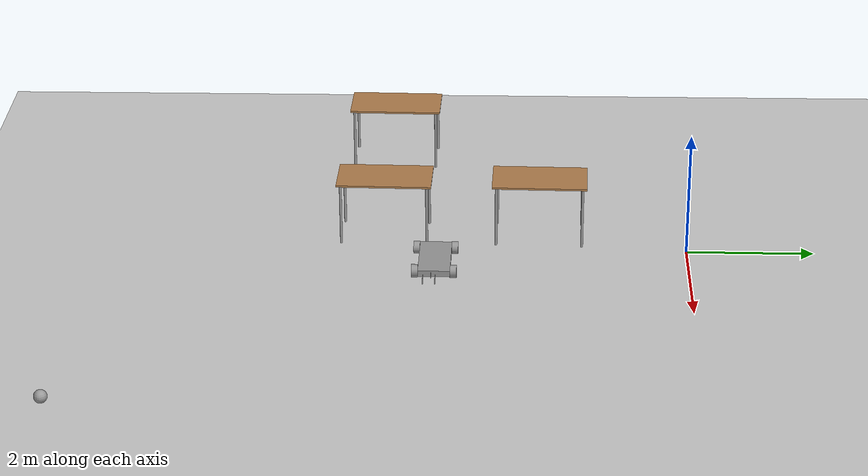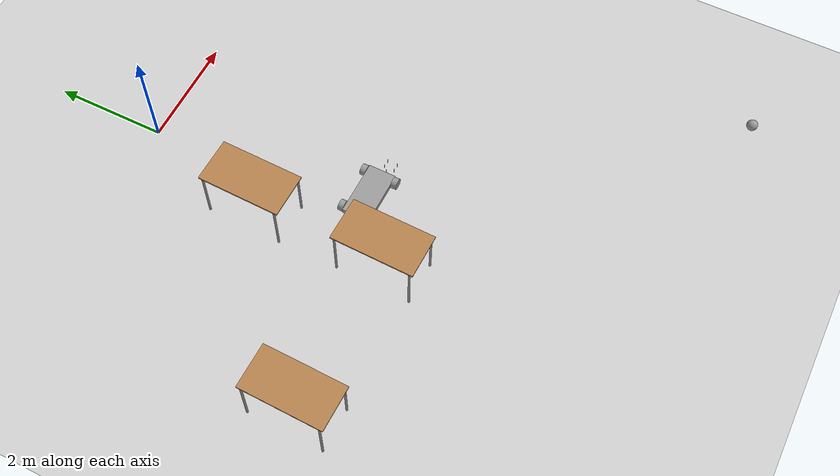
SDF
<sdf version="1.6">
 <world name="default">
  <model name="ground_plane">
   <static>1</static>
   <link name="link">
    <collision name="collision">
     <geometry><plane><normal>0 0 1</normal><size>100 100</size></plane></geometry>
     <surface>
      <contact><collide_bitmask>65535</collide_bitmask></contact>
      <friction><ode><mu>100</mu><mu2>50</mu2></ode></friction>
     </surface>
    </collision>
    <visual name="visual">
     <cast_shadows>0</cast_shadows>
     <geometry><plane><normal>0 0 1</normal><size>100 100</size></plane></geometry>
     <material>
      <script><uri>file://media/materials/scripts/gazebo.material</uri><name>Gazebo/Grey</name></script>
     </material>
    </visual>
   </link>
  </model>
  <model name="building">
   <model name="table_3">
    <static>1</static>
    <link name="link">
     <collision name="surface">
      <pose>0 0 1 0 -0 0</pose>
      <geometry><box><size>1.5 0.8 0.03</size></box></geometry>
      <surface><friction><ode><mu>0.6</mu><mu2>0.6</mu2></ode></friction></surface>
     </collision>
     <visual name="visual1">
      <pose>0 0 1 0 -0 0</pose>
      <geometry><box><size>1.5 0.8 0.03</size></box></geometry>
      <material>
       <script><uri>file://media/materials/scripts/gazebo.material</uri><name>Gazebo/Wood</name></script>
      </material>
     </visual>
     <collision name="front_left_leg">
      <pose>0.68 0.38 0.5 0 -0 0</pose>
      <geometry><cylinder><radius>0.02</radius><length>1</length></cylinder></geometry>
     </collision>
     <visual name="front_left_leg">
      <pose>0.68 0.38 0.5 0 -0 0</pose>
      <geometry><cylinder><radius>0.02</radius><length>1</length></cylinder></geometry>
      <material>
       <script><uri>file://media/materials/scripts/gazebo.material</uri><name>Gazebo/Grey</name></script>
      </material>
     </visual>
     <collision name="front_right_leg">
      <pose>0.68 -0.38 0.5 0 -0 0</pose>
      <geometry><cylinder><radius>0.02</radius><length>1</length></cylinder></geometry>
     </collision>
     <visual name="front_right_leg">
      <pose>0.68 -0.38 0.5 0 -0 0</pose>
      <geometry><cylinder><radius>0.02</radius><length>1</length></cylinder></geometry>
      <material>
       <script><uri>file://media/materials/scripts/gazebo.material</uri><name>Gazebo/Grey</name></script>
      </material>
     </visual>
     <collision name="back_right_leg">
      <pose>-0.68 -0.38 0.5 0 -0 0</pose>
      <geometry><cylinder><radius>0.02</radius><length>1</length></cylinder></geometry>
     </collision>
     <visual name="back_right_leg">
      <pose>-0.68 -0.38 0.5 0 -0 0</pose>
      <geometry><cylinder><radius>0.02</radius><length>1</length></cylinder></geometry>
      <material>
       <script><uri>file://media/materials/scripts/gazebo.material</uri><name>Gazebo/Grey</name></script>
      </material>
     </visual>
     <collision name="back_left_leg">
      <pose>-0.68 0.38 0.5 0 -0 0</pose>
      <geometry><cylinder><radius>0.02</radius><length>1</length></cylinder></geometry>
     </collision>
     <visual name="back_left_leg">
      <pose>-0.68 0.38 0.5 0 -0 0</pose>
      <geometry><cylinder><radius>0.02</radius><length>1</length></cylinder></geometry>
      <material>
       <script><uri>file://media/materials/scripts/gazebo.material</uri><name>Gazebo/Grey</name></script>
      </material>
     </visual>
    </link>
    <pose>-3.15507 -5.06799 0 0 0 -1.59458</pose>
   </model>
   <model name="table_3_clone_0">
    <static>1</static>
    <link name="link">
     <collision name="surface">
      <pose>0 0 1 0 -0 0</pose>
      <geometry><box><size>1.5 0.8 0.03</size></box></geometry>
      <surface><friction><ode><mu>0.6</mu><mu2>0.6</mu2></ode></friction></surface>
     </collision>
     <visual name="visual1">
      <pose>0 0 1 0 -0 0</pose>
      <geometry><box><size>1.5 0.8 0.03</size></box></geometry>
      <material>
       <script><uri>file://media/materials/scripts/gazebo.material</uri><name>Gazebo/Wood</name></script>
      </material>
     </visual>
     <collision name="front_left_leg">
      <pose>0.68 0.38 0.5 0 -0 0</pose>
      <geometry><cylinder><radius>0.02</radius><length>1</length></cylinder></geometry>
     </collision>
     <visual name="front_left_leg">
      <pose>0.68 0.38 0.5 0 -0 0</pose>
      <geometry><cylinder><radius>0.02</radius><length>1</length></cylinder></geometry>
      <material>
       <script><uri>file://media/materials/scripts/gazebo.material</uri><name>Gazebo/Grey</name></script>
      </material>
     </visual>
     <collision name="front_right_leg">
      <pose>0.68 -0.38 0.5 0 -0 0</pose>
      <geometry><cylinder><radius>0.02</radius><length>1</length></cylinder></geometry>
     </collision>
     <visual name="front_right_leg">
      <pose>0.68 -0.38 0.5 0 -0 0</pose>
      <geometry><cylinder><radius>0.02</radius><length>1</length></cylinder></geometry>
      <material>
       <script><uri>file://media/materials/scripts/gazebo.material</uri><name>Gazebo/Grey</name></script>
      </material>
     </visual>
     <collision name="back_right_leg">
      <pose>-0.68 -0.38 0.5 0 -0 0</pose>
      <geometry><cylinder><radius>0.02</radius><length>1</length></cylinder></geometry>
     </collision>
     <visual name="back_right_leg">
      <pose>-0.68 -0.38 0.5 0 -0 0</pose>
      <geometry><cylinder><radius>0.02</radius><length>1</length></cylinder></geometry>
      <material>
       <script><uri>file://media/materials/scripts/gazebo.material</uri><name>Gazebo/Grey</name></script>
      </material>
     </visual>
     <collision name="back_left_leg">
      <pose>-0.68 0.38 0.5 0 -0 0</pose>
      <geometry><cylinder><radius>0.02</radius><length>1</length></cylinder></geometry>
     </collision>
     <visual name="back_left_leg">
      <pose>-0.68 0.38 0.5 0 -0 0</pose>
      <geometry><cylinder><radius>0.02</radius><length>1</length></cylinder></geometry>
      <material>
       <script><uri>file://media/materials/scripts/gazebo.material</uri><name>Gazebo/Grey</name></script>
      </material>
     </visual>
    </link>
    <pose>-0.282863 -5.12208 0 0 0 -1.59458</pose>
   </model>
   <model name="table_3_clone_1">
    <static>1</static>
    <link name="link">
     <collision name="surface">
      <pose>0 0 1 0 -0 0</pose>
      <geometry><box><size>1.5 0.8 0.03</size></box></geometry>
      <surface><friction><ode><mu>0.6</mu><mu2>0.6</mu2></ode></friction></surface>
     </collision>
     <visual name="visual1">
      <pose>0 0 1 0 -0 0</pose>
      <geometry><box><size>1.5 0.8 0.03</size></box></geometry>
      <material>
       <script><uri>file://media/materials/scripts/gazebo.material</uri><name>Gazebo/Wood</name></script>
      </material>
     </visual>
     <collision name="front_left_leg">
      <pose>0.68 0.38 0.5 0 -0 0</pose>
      <geometry><cylinder><radius>0.02</radius><length>1</length></cylinder></geometry>
     </collision>
     <visual name="front_left_leg">
      <pose>0.68 0.38 0.5 0 -0 0</pose>
      <geometry><cylinder><radius>0.02</radius><length>1</length></cylinder></geometry>
      <material>
       <script><uri>file://media/materials/scripts/gazebo.material</uri><name>Gazebo/Grey</name></script>
      </material>
     </visual>
     <collision name="front_right_leg">
      <pose>0.68 -0.38 0.5 0 -0 0</pose>
      <geometry><cylinder><radius>0.02</radius><length>1</length></cylinder></geometry>
     </collision>
     <visual name="front_right_leg">
      <pose>0.68 -0.38 0.5 0 -0 0</pose>
      <geometry><cylinder><radius>0.02</radius><length>1</length></cylinder></geometry>
      <material>
       <script><uri>file://media/materials/scripts/gazebo.material</uri><name>Gazebo/Grey</name></script>
      </material>
     </visual>
     <collision name="back_right_leg">
      <pose>-0.68 -0.38 0.5 0 -0 0</pose>
      <geometry><cylinder><radius>0.02</radius><length>1</length></cylinder></geometry>
     </collision>
     <visual name="back_right_leg">
      <pose>-0.68 -0.38 0.5 0 -0 0</pose>
      <geometry><cylinder><radius>0.02</radius><length>1</length></cylinder></geometry>
      <material>
       <script><uri>file://media/materials/scripts/gazebo.material</uri><name>Gazebo/Grey</name></script>
      </material>
     </visual>
     <collision name="back_left_leg">
      <pose>-0.68 0.38 0.5 0 -0 0</pose>
      <geometry><cylinder><radius>0.02</radius><length>1</length></cylinder></geometry>
     </collision>
     <visual name="back_left_leg">
      <pose>-0.68 0.38 0.5 0 -0 0</pose>
      <geometry><cylinder><radius>0.02</radius><length>1</length></cylinder></geometry>
      <material>
       <script><uri>file://media/materials/scripts/gazebo.material</uri><name>Gazebo/Grey</name></script>
      </material>
     </visual>
    </link>
    <pose>-0.263102 -2.66567 0 0 0 -1.59458</pose>
   </model>
   <static>0</static>
   <pose>-0.30353 0.345668 0 0 -0 0</pose>
  </model>
  <model name="4wheelWithGripper_0">
   <model name="4_wheel_with_gripper">
    <link name="link_0">
     <pose>-0.32743 0.03164 0 0 -0 0</pose>
     <inertial>
      <mass>1</mass>
      <inertia>
       <ixx>0.166667</ixx>
       <ixy>0</ixy>
       <ixz>0</ixz>
       <iyy>0.166667</iyy>
       <iyz>0</iyz>
       <izz>0.166667</izz>
      </inertia>
     </inertial>
     <visual name="visual">
      <geometry><box><size>1 0.5 0.1</size></box></geometry>
      <material>
       <lighting>1</lighting>
       <script><uri>file://media/materials/scripts/gazebo.material</uri><name>Gazebo/Grey</name></script>
       <shader type="pixel"><normal_map>__default__</normal_map></shader>
       <ambient>0.3 0.3 0.3 1</ambient>
       <diffuse>0.7 0.7 0.7 1</diffuse>
       <specular>0.01 0.01 0.01 1</specular>
       <emissive>0 0 0 1</emissive>
      </material>
     </visual>
     <collision name="collision">
      <geometry><box><size>1 0.5 0.1</size></box></geometry>
      <surface>
       <friction>
        <ode><mu>1</mu><mu2>1</mu2><fdir1>0 0 0</fdir1><slip1>0</slip1><slip2>0</slip2></ode>
        <torsional>
         <coefficient>1</coefficient>
         <patch_radius>0</patch_radius>
         <surface_radius>0</surface_radius>
         <use_patch_radius>1</use_patch_radius>
         <ode><slip>0</slip></ode>
        </torsional>
       </friction>
       <bounce><restitution_coefficient>0</restitution_coefficient><threshold>1e+06</threshold></bounce>
       <contact>
        <collide_without_contact>0</collide_without_contact>
        <collide_without_contact_bitmask>1</collide_without_contact_bitmask>
        <collide_bitmask>1</collide_bitmask>
        <ode>
         <soft_cfm>0</soft_cfm>
         <soft_erp>0.2</soft_erp>
         <kp>1e+13</kp>
         <kd>1</kd>
         <max_vel>0.01</max_vel>
         <min_depth>0</min_depth>
        </ode>
        <bullet>
         <split_impulse>1</split_impulse>
         <split_impulse_penetration_threshold>-0.01</split_impulse_penetration_threshold>
         <soft_cfm>0</soft_cfm>
         <soft_erp>0.2</soft_erp>
         <kp>1e+13</kp>
         <kd>1</kd>
        </bullet>
       </contact>
      </surface>
     </collision>
    </link>
    <link name="link_2">
     <pose>-0.72743 -0.268373 0 1.5707 -0 0</pose>
     <inertial>
      <mass>1</mass>
      <inertia><ixx>0.145833</ixx><ixy>0</ixy><ixz>0</ixz><iyy>0.145833</iyy><iyz>0</iyz><izz>0.125</izz></inertia>
     </inertial>
     <visual name="visual">
      <geometry><cylinder><radius>0.1</radius><length>0.1</length></cylinder></geometry>
      <material>
       <lighting>1</lighting>
       <script><uri>file://media/materials/scripts/gazebo.material</uri><name>Gazebo/Grey</name></script>
       <shader type="pixel"><normal_map>__default__</normal_map></shader>
       <ambient>0.3 0.3 0.3 1</ambient>
       <diffuse>0.7 0.7 0.7 1</diffuse>
       <specular>0.01 0.01 0.01 1</specular>
       <emissive>0 0 0 1</emissive>
      </material>
     </visual>
     <collision name="collision">
      <geometry><cylinder><radius>0.1</radius><length>0.1</length></cylinder></geometry>
      <surface>
       <friction>
        <ode><mu>1</mu><mu2>1</mu2><fdir1>0 0 0</fdir1><slip1>0</slip1><slip2>0</slip2></ode>
        <torsional>
         <coefficient>1</coefficient>
         <patch_radius>0</patch_radius>
         <surface_radius>0</surface_radius>
         <use_patch_radius>1</use_patch_radius>
         <ode><slip>0</slip></ode>
        </torsional>
       </friction>
       <bounce><restitution_coefficient>0</restitution_coefficient><threshold>1e+06</threshold></bounce>
       <contact>
        <collide_without_contact>0</collide_without_contact>
        <collide_without_contact_bitmask>1</collide_without_contact_bitmask>
        <collide_bitmask>1</collide_bitmask>
        <ode>
         <soft_cfm>0</soft_cfm>
         <soft_erp>0.2</soft_erp>
         <kp>1e+13</kp>
         <kd>1</kd>
         <max_vel>0.01</max_vel>
         <min_depth>0</min_depth>
        </ode>
        <bullet>
         <split_impulse>1</split_impulse>
         <split_impulse_penetration_threshold>-0.01</split_impulse_penetration_threshold>
         <soft_cfm>0</soft_cfm>
         <soft_erp>0.2</soft_erp>
         <kp>1e+13</kp>
         <kd>1</kd>
        </bullet>
       </contact>
      </surface>
     </collision>
    </link>
    <link name="link_2_clone">
     <pose>0.07257 0.33165 0 1.5707 -0 0</pose>
     <inertial>
      <mass>1</mass>
      <inertia><ixx>0.145833</ixx><ixy>0</ixy><ixz>0</ixz><iyy>0.145833</iyy><iyz>0</iyz><izz>0.125</izz></inertia>
     </inertial>
     <visual name="visual">
      <geometry><cylinder><radius>0.1</radius><length>0.1</length></cylinder></geometry>
      <material>
       <lighting>1</lighting>
       <script><uri>file://media/materials/scripts/gazebo.material</uri><name>Gazebo/Grey</name></script>
       <shader type="pixel"><normal_map>__default__</normal_map></shader>
       <ambient>0.3 0.3 0.3 1</ambient>
       <diffuse>0.7 0.7 0.7 1</diffuse>
       <specular>0.01 0.01 0.01 1</specular>
       <emissive>0 0 0 1</emissive>
      </material>
     </visual>
     <collision name="collision">
      <geometry><cylinder><radius>0.1</radius><length>0.1</length></cylinder></geometry>
      <surface>
       <friction>
        <ode><mu>1</mu><mu2>1</mu2><fdir1>0 0 0</fdir1><slip1>0</slip1><slip2>0</slip2></ode>
        <torsional>
         <coefficient>1</coefficient>
         <patch_radius>0</patch_radius>
         <surface_radius>0</surface_radius>
         <use_patch_radius>1</use_patch_radius>
         <ode><slip>0</slip></ode>
        </torsional>
       </friction>
       <bounce><restitution_coefficient>0</restitution_coefficient><threshold>1e+06</threshold></bounce>
       <contact>
        <collide_without_contact>0</collide_without_contact>
        <collide_without_contact_bitmask>1</collide_without_contact_bitmask>
        <collide_bitmask>1</collide_bitmask>
        <ode>
         <soft_cfm>0</soft_cfm>
         <soft_erp>0.2</soft_erp>
         <kp>1e+13</kp>
         <kd>1</kd>
         <max_vel>0.01</max_vel>
         <min_depth>0</min_depth>
        </ode>
        <bullet>
         <split_impulse>1</split_impulse>
         <split_impulse_penetration_threshold>-0.01</split_impulse_penetration_threshold>
         <soft_cfm>0</soft_cfm>
         <soft_erp>0.2</soft_erp>
         <kp>1e+13</kp>
         <kd>1</kd>
        </bullet>
       </contact>
      </surface>
     </collision>
    </link>
    <link name="link_2_clone_0">
     <pose>-0.72743 0.33165 0 1.5707 -0 0</pose>
     <inertial>
      <mass>1</mass>
      <inertia><ixx>0.145833</ixx><ixy>0</ixy><ixz>0</ixz><iyy>0.145833</iyy><iyz>0</iyz><izz>0.125</izz></inertia>
     </inertial>
     <visual name="visual">
      <geometry><cylinder><radius>0.1</radius><length>0.1</length></cylinder></geometry>
      <material>
       <lighting>1</lighting>
       <script><uri>file://media/materials/scripts/gazebo.material</uri><name>Gazebo/Grey</name></script>
       <shader type="pixel"><normal_map>__default__</normal_map></shader>
       <ambient>0.3 0.3 0.3 1</ambient>
       <diffuse>0.7 0.7 0.7 1</diffuse>
       <specular>0.01 0.01 0.01 1</specular>
       <emissive>0 0 0 1</emissive>
      </material>
     </visual>
     <collision name="collision">
      <geometry><cylinder><radius>0.1</radius><length>0.1</length></cylinder></geometry>
      <surface>
       <friction>
        <ode><mu>1</mu><mu2>1</mu2><fdir1>0 0 0</fdir1><slip1>0</slip1><slip2>0</slip2></ode>
        <torsional>
         <coefficient>1</coefficient>
         <patch_radius>0</patch_radius>
         <surface_radius>0</surface_radius>
         <use_patch_radius>1</use_patch_radius>
         <ode><slip>0</slip></ode>
        </torsional>
       </friction>
       <bounce><restitution_coefficient>0</restitution_coefficient><threshold>1e+06</threshold></bounce>
       <contact>
        <collide_without_contact>0</collide_without_contact>
        <collide_without_contact_bitmask>1</collide_without_contact_bitmask>
        <collide_bitmask>1</collide_bitmask>
        <ode>
         <soft_cfm>0</soft_cfm>
         <soft_erp>0.2</soft_erp>
         <kp>1e+13</kp>
         <kd>1</kd>
         <max_vel>0.01</max_vel>
         <min_depth>0</min_depth>
        </ode>
        <bullet>
         <split_impulse>1</split_impulse>
         <split_impulse_penetration_threshold>-0.01</split_impulse_penetration_threshold>
         <soft_cfm>0</soft_cfm>
         <soft_erp>0.2</soft_erp>
         <kp>1e+13</kp>
         <kd>1</kd>
        </bullet>
       </contact>
      </surface>
     </collision>
    </link>
    <link name="link_2_clone_1">
     <pose>0.07257 -0.268369 0 1.5707 -0 0</pose>
     <inertial>
      <mass>1</mass>
      <inertia><ixx>0.145833</ixx><ixy>0</ixy><ixz>0</ixz><iyy>0.145833</iyy><iyz>0</iyz><izz>0.125</izz></inertia>
     </inertial>
     <visual name="visual">
      <geometry><cylinder><radius>0.1</radius><length>0.1</length></cylinder></geometry>
      <material>
       <lighting>1</lighting>
       <script><uri>file://media/materials/scripts/gazebo.material</uri><name>Gazebo/Grey</name></script>
       <shader type="pixel"><normal_map>__default__</normal_map></shader>
       <ambient>0.3 0.3 0.3 1</ambient>
       <diffuse>0.7 0.7 0.7 1</diffuse>
       <specular>0.01 0.01 0.01 1</specular>
       <emissive>0 0 0 1</emissive>
      </material>
     </visual>
     <collision name="collision">
      <geometry><cylinder><radius>0.1</radius><length>0.1</length></cylinder></geometry>
      <surface>
       <friction>
        <ode><mu>1</mu><mu2>1</mu2><fdir1>0 0 0</fdir1><slip1>0</slip1><slip2>0</slip2></ode>
        <torsional>
         <coefficient>1</coefficient>
         <patch_radius>0</patch_radius>
         <surface_radius>0</surface_radius>
         <use_patch_radius>1</use_patch_radius>
         <ode><slip>0</slip></ode>
        </torsional>
       </friction>
       <bounce><restitution_coefficient>0</restitution_coefficient><threshold>1e+06</threshold></bounce>
       <contact>
        <collide_without_contact>0</collide_without_contact>
        <collide_without_contact_bitmask>1</collide_without_contact_bitmask>
        <collide_bitmask>1</collide_bitmask>
        <ode>
         <soft_cfm>0</soft_cfm>
         <soft_erp>0.2</soft_erp>
         <kp>1e+13</kp>
         <kd>1</kd>
         <max_vel>0.01</max_vel>
         <min_depth>0</min_depth>
        </ode>
        <bullet>
         <split_impulse>1</split_impulse>
         <split_impulse_penetration_threshold>-0.01</split_impulse_penetration_threshold>
         <soft_cfm>0</soft_cfm>
         <soft_erp>0.2</soft_erp>
         <kp>1e+13</kp>
         <kd>1</kd>
        </bullet>
       </contact>
      </surface>
     </collision>
    </link>
    <link name="link_3">
     <pose>0.22257 -0.01336 0 0 -0 0</pose>
     <inertial>
      <mass>1</mass>
      <inertia>
       <ixx>0.166667</ixx>
       <ixy>0</ixy>
       <ixz>0</ixz>
       <iyy>0.166667</iyy>
       <iyz>0</iyz>
       <izz>0.166667</izz>
      </inertia>
     </inertial>
     <visual name="visual">
      <geometry><box><size>0.01 0.01 0.1</size></box></geometry>
      <material>
       <lighting>1</lighting>
       <script><uri>file://media/materials/scripts/gazebo.material</uri><name>Gazebo/Grey</name></script>
       <shader type="pixel"><normal_map>__default__</normal_map></shader>
       <ambient>0.3 0.3 0.3 1</ambient>
       <diffuse>0.7 0.7 0.7 1</diffuse>
       <specular>0.01 0.01 0.01 1</specular>
       <emissive>0 0 0 1</emissive>
      </material>
     </visual>
     <collision name="collision">
      <geometry><box><size>0.1 0.1 0.1</size></box></geometry>
      <surface>
       <friction>
        <ode><mu>1</mu><mu2>1</mu2><fdir1>0 0 0</fdir1><slip1>0</slip1><slip2>0</slip2></ode>
        <torsional>
         <coefficient>1</coefficient>
         <patch_radius>0</patch_radius>
         <surface_radius>0</surface_radius>
         <use_patch_radius>1</use_patch_radius>
         <ode><slip>0</slip></ode>
        </torsional>
       </friction>
       <bounce><restitution_coefficient>0</restitution_coefficient><threshold>1e+06</threshold></bounce>
       <contact>
        <collide_without_contact>0</collide_without_contact>
        <collide_without_contact_bitmask>1</collide_without_contact_bitmask>
        <collide_bitmask>1</collide_bitmask>
        <ode>
         <soft_cfm>0</soft_cfm>
         <soft_erp>0.2</soft_erp>
         <kp>1e+13</kp>
         <kd>1</kd>
         <max_vel>0.01</max_vel>
         <min_depth>0</min_depth>
        </ode>
        <bullet>
         <split_impulse>1</split_impulse>
         <split_impulse_penetration_threshold>-0.01</split_impulse_penetration_threshold>
         <soft_cfm>0</soft_cfm>
         <soft_erp>0.2</soft_erp>
         <kp>1e+13</kp>
         <kd>1</kd>
        </bullet>
       </contact>
      </surface>
     </collision>
    </link>
    <link name="link_3_clone">
     <pose>0.29472 0.05879 0 0 -0 0.5</pose>
     <inertial>
      <mass>1</mass>
      <inertia>
       <ixx>0.166667</ixx>
       <ixy>0</ixy>
       <ixz>0</ixz>
       <iyy>0.166667</iyy>
       <iyz>0</iyz>
       <izz>0.166667</izz>
      </inertia>
     </inertial>
     <visual name="visual">
      <geometry><box><size>0.01 0.01 0.1</size></box></geometry>
      <material>
       <lighting>1</lighting>
       <script><uri>file://media/materials/scripts/gazebo.material</uri><name>Gazebo/Grey</name></script>
       <shader type="pixel"><normal_map>__default__</normal_map></shader>
       <ambient>0.3 0.3 0.3 1</ambient>
       <diffuse>0.7 0.7 0.7 1</diffuse>
       <specular>0.01 0.01 0.01 1</specular>
       <emissive>0 0 0 1</emissive>
      </material>
     </visual>
     <collision name="collision">
      <geometry><box><size>0.1 0.1 0.1</size></box></geometry>
      <surface>
       <friction>
        <ode><mu>1</mu><mu2>1</mu2><fdir1>0 0 0</fdir1><slip1>0</slip1><slip2>0</slip2></ode>
        <torsional>
         <coefficient>1</coefficient>
         <patch_radius>0</patch_radius>
         <surface_radius>0</surface_radius>
         <use_patch_radius>1</use_patch_radius>
         <ode><slip>0</slip></ode>
        </torsional>
       </friction>
       <bounce><restitution_coefficient>0</restitution_coefficient><threshold>1e+06</threshold></bounce>
       <contact>
        <collide_without_contact>0</collide_without_contact>
        <collide_without_contact_bitmask>1</collide_without_contact_bitmask>
        <collide_bitmask>1</collide_bitmask>
        <ode>
         <soft_cfm>0</soft_cfm>
         <soft_erp>0.2</soft_erp>
         <kp>1e+13</kp>
         <kd>1</kd>
         <max_vel>0.01</max_vel>
         <min_depth>0</min_depth>
        </ode>
        <bullet>
         <split_impulse>1</split_impulse>
         <split_impulse_penetration_threshold>-0.01</split_impulse_penetration_threshold>
         <soft_cfm>0</soft_cfm>
         <soft_erp>0.2</soft_erp>
         <kp>1e+13</kp>
         <kd>1</kd>
        </bullet>
       </contact>
      </surface>
     </collision>
    </link>
    <link name="link_3_clone_1">
     <pose>0.41257 -0.13121 0 0 -0 0</pose>
     <inertial>
      <mass>1</mass>
      <inertia>
       <ixx>0.166667</ixx>
       <ixy>0</ixy>
       <ixz>0</ixz>
       <iyy>0.166667</iyy>
       <iyz>0</iyz>
       <izz>0.166667</izz>
      </inertia>
     </inertial>
     <visual name="visual">
      <geometry><box><size>0.01 0.01 0.1</size></box></geometry>
      <material>
       <lighting>1</lighting>
       <script><uri>file://media/materials/scripts/gazebo.material</uri><name>Gazebo/Grey</name></script>
       <shader type="pixel"><normal_map>__default__</normal_map></shader>
       <ambient>0.3 0.3 0.3 1</ambient>
       <diffuse>0.7 0.7 0.7 1</diffuse>
       <specular>0.01 0.01 0.01 1</specular>
       <emissive>0 0 0 1</emissive>
      </material>
     </visual>
     <collision name="collision">
      <geometry><box><size>0.1 0.1 0.1</size></box></geometry>
      <surface>
       <friction>
        <ode><mu>1</mu><mu2>1</mu2><fdir1>0 0 0</fdir1><slip1>0</slip1><slip2>0</slip2></ode>
        <torsional>
         <coefficient>1</coefficient>
         <patch_radius>0</patch_radius>
         <surface_radius>0</surface_radius>
         <use_patch_radius>1</use_patch_radius>
         <ode><slip>0</slip></ode>
        </torsional>
       </friction>
       <bounce><restitution_coefficient>0</restitution_coefficient><threshold>1e+06</threshold></bounce>
       <contact>
        <collide_without_contact>0</collide_without_contact>
        <collide_without_contact_bitmask>1</collide_without_contact_bitmask>
        <collide_bitmask>1</collide_bitmask>
        <ode>
         <soft_cfm>0</soft_cfm>
         <soft_erp>0.2</soft_erp>
         <kp>1e+13</kp>
         <kd>1</kd>
         <max_vel>0.01</max_vel>
         <min_depth>0</min_depth>
        </ode>
        <bullet>
         <split_impulse>1</split_impulse>
         <split_impulse_penetration_threshold>-0.01</split_impulse_penetration_threshold>
         <soft_cfm>0</soft_cfm>
         <soft_erp>0.2</soft_erp>
         <kp>1e+13</kp>
         <kd>1</kd>
        </bullet>
       </contact>
      </surface>
     </collision>
    </link>
    <link name="link_3_clone_1_clone">
     <pose>0.41257 0.05879 0 0 -0 0</pose>
     <inertial>
      <mass>1</mass>
      <inertia>
       <ixx>0.166667</ixx>
       <ixy>0</ixy>
       <ixz>0</ixz>
       <iyy>0.166667</iyy>
       <iyz>0</iyz>
       <izz>0.166667</izz>
      </inertia>
     </inertial>
     <visual name="visual">
      <geometry><box><size>0.01 0.01 0.1</size></box></geometry>
      <material>
       <lighting>1</lighting>
       <script><uri>file://media/materials/scripts/gazebo.material</uri><name>Gazebo/Grey</name></script>
       <shader type="pixel"><normal_map>__default__</normal_map></shader>
       <ambient>0.3 0.3 0.3 1</ambient>
       <diffuse>0.7 0.7 0.7 1</diffuse>
       <specular>0.01 0.01 0.01 1</specular>
       <emissive>0 0 0 1</emissive>
      </material>
     </visual>
     <collision name="collision">
      <geometry><box><size>0.1 0.1 0.1</size></box></geometry>
      <surface>
       <friction>
        <ode><mu>1</mu><mu2>1</mu2><fdir1>0 0 0</fdir1><slip1>0</slip1><slip2>0</slip2></ode>
        <torsional>
         <coefficient>1</coefficient>
         <patch_radius>0</patch_radius>
         <surface_radius>0</surface_radius>
         <use_patch_radius>1</use_patch_radius>
         <ode><slip>0</slip></ode>
        </torsional>
       </friction>
       <bounce><restitution_coefficient>0</restitution_coefficient><threshold>1e+06</threshold></bounce>
       <contact>
        <collide_without_contact>0</collide_without_contact>
        <collide_without_contact_bitmask>1</collide_without_contact_bitmask>
        <collide_bitmask>1</collide_bitmask>
        <ode>
         <soft_cfm>0</soft_cfm>
         <soft_erp>0.2</soft_erp>
         <kp>1e+13</kp>
         <kd>1</kd>
         <max_vel>0.01</max_vel>
         <min_depth>0</min_depth>
        </ode>
        <bullet>
         <split_impulse>1</split_impulse>
         <split_impulse_penetration_threshold>-0.01</split_impulse_penetration_threshold>
         <soft_cfm>0</soft_cfm>
         <soft_erp>0.2</soft_erp>
         <kp>1e+13</kp>
         <kd>1</kd>
        </bullet>
       </contact>
      </surface>
     </collision>
    </link>
    <link name="link_3_clone_clone">
     <pose>0.29472 -0.13121 0 0 -0 0.5</pose>
     <inertial>
      <mass>1</mass>
      <inertia>
       <ixx>0.166667</ixx>
       <ixy>0</ixy>
       <ixz>0</ixz>
       <iyy>0.166667</iyy>
       <iyz>0</iyz>
       <izz>0.166667</izz>
      </inertia>
     </inertial>
     <visual name="visual">
      <geometry><box><size>0.01 0.01 0.1</size></box></geometry>
      <material>
       <lighting>1</lighting>
       <script><uri>file://media/materials/scripts/gazebo.material</uri><name>Gazebo/Grey</name></script>
       <shader type="pixel"><normal_map>__default__</normal_map></shader>
       <ambient>0.3 0.3 0.3 1</ambient>
       <diffuse>0.7 0.7 0.7 1</diffuse>
       <specular>0.01 0.01 0.01 1</specular>
       <emissive>0 0 0 1</emissive>
      </material>
     </visual>
     <collision name="collision">
      <geometry><box><size>0.1 0.1 0.1</size></box></geometry>
      <surface>
       <friction>
        <ode><mu>1</mu><mu2>1</mu2><fdir1>0 0 0</fdir1><slip1>0</slip1><slip2>0</slip2></ode>
        <torsional>
         <coefficient>1</coefficient>
         <patch_radius>0</patch_radius>
         <surface_radius>0</surface_radius>
         <use_patch_radius>1</use_patch_radius>
         <ode><slip>0</slip></ode>
        </torsional>
       </friction>
       <bounce><restitution_coefficient>0</restitution_coefficient><threshold>1e+06</threshold></bounce>
       <contact>
        <collide_without_contact>0</collide_without_contact>
        <collide_without_contact_bitmask>1</collide_without_contact_bitmask>
        <collide_bitmask>1</collide_bitmask>
        <ode>
         <soft_cfm>0</soft_cfm>
         <soft_erp>0.2</soft_erp>
         <kp>1e+13</kp>
         <kd>1</kd>
         <max_vel>0.01</max_vel>
         <min_depth>0</min_depth>
        </ode>
        <bullet>
         <split_impulse>1</split_impulse>
         <split_impulse_penetration_threshold>-0.01</split_impulse_penetration_threshold>
         <soft_cfm>0</soft_cfm>
         <soft_erp>0.2</soft_erp>
         <kp>1e+13</kp>
         <kd>1</kd>
        </bullet>
       </contact>
      </surface>
     </collision>
    </link>
    <joint name="link_0_JOINT_0" type="revolute">
     <parent>link_0</parent>
     <child>link_2</child>
     <axis>
      <xyz>1 0 0</xyz>
      <use_parent_model_frame>0</use_parent_model_frame>
      <limit>
       <lower>-1.79769e+308</lower>
       <upper>1.79769e+308</upper>
       <effort>-1</effort>
       <velocity>-1</velocity>
      </limit>
      <dynamics>
       <spring_reference>0</spring_reference>
       <spring_stiffness>0</spring_stiffness>
       <damping>0</damping>
      </dynamics>
     </axis>
     <physics>
      <ode><limit><cfm>0</cfm><erp>0.2</erp></limit><suspension><cfm>0</cfm><erp>0.2</erp></suspension></ode>
     </physics>
    </joint>
    <joint name="link_0_JOINT_2" type="revolute">
     <parent>link_0</parent>
     <child>link_2_clone_0</child>
     <axis>
      <xyz>0 0 1</xyz>
      <use_parent_model_frame>0</use_parent_model_frame>
      <limit>
       <lower>-1.79769e+308</lower>
       <upper>1.79769e+308</upper>
       <effort>-1</effort>
       <velocity>-1</velocity>
      </limit>
      <dynamics>
       <spring_reference>0</spring_reference>
       <spring_stiffness>0</spring_stiffness>
       <damping>0</damping>
      </dynamics>
     </axis>
     <physics>
      <ode><limit><cfm>0</cfm><erp>0.2</erp></limit><suspension><cfm>0</cfm><erp>0.2</erp></suspension></ode>
     </physics>
    </joint>
    <joint name="link_0_JOINT_3" type="revolute">
     <parent>link_0</parent>
     <child>link_2_clone_1</child>
     <axis>
      <xyz>0 0 1</xyz>
      <use_parent_model_frame>0</use_parent_model_frame>
      <limit>
       <lower>-1.79769e+308</lower>
       <upper>1.79769e+308</upper>
       <effort>-1</effort>
       <velocity>-1</velocity>
      </limit>
      <dynamics>
       <spring_reference>0</spring_reference>
       <spring_stiffness>0</spring_stiffness>
       <damping>0</damping>
      </dynamics>
     </axis>
     <physics>
      <ode><limit><cfm>0</cfm><erp>0.2</erp></limit><suspension><cfm>0</cfm><erp>0.2</erp></suspension></ode>
     </physics>
    </joint>
    <joint name="link_0_JOINT_4" type="revolute">
     <parent>link_0</parent>
     <child>link_2_clone</child>
     <axis>
      <xyz>0 0 1</xyz>
      <use_parent_model_frame>0</use_parent_model_frame>
      <limit>
       <lower>-1.79769e+308</lower>
       <upper>1.79769e+308</upper>
       <effort>-1</effort>
       <velocity>-1</velocity>
      </limit>
      <dynamics>
       <spring_reference>0</spring_reference>
       <spring_stiffness>0</spring_stiffness>
       <damping>0</damping>
      </dynamics>
     </axis>
     <physics>
      <ode><limit><cfm>0</cfm><erp>0.2</erp></limit><suspension><cfm>0</cfm><erp>0.2</erp></suspension></ode>
     </physics>
    </joint>
    <joint name="link_0_JOINT_5" type="revolute">
     <parent>link_0</parent>
     <child>link_3</child>
     <axis>
      <xyz>0 0 1</xyz>
      <use_parent_model_frame>0</use_parent_model_frame>
      <limit>
       <lower>-1.79769e+308</lower>
       <upper>1.79769e+308</upper>
       <effort>-1</effort>
       <velocity>-1</velocity>
      </limit>
      <dynamics>
       <spring_reference>0</spring_reference>
       <spring_stiffness>0</spring_stiffness>
       <damping>0</damping>
      </dynamics>
     </axis>
     <physics>
      <ode><limit><cfm>0</cfm><erp>0.2</erp></limit><suspension><cfm>0</cfm><erp>0.2</erp></suspension></ode>
     </physics>
    </joint>
    <joint name="link_3_JOINT_8" type="revolute">
     <parent>link_3</parent>
     <child>link_3_clone_clone</child>
     <axis>
      <xyz>0 0 1</xyz>
      <use_parent_model_frame>0</use_parent_model_frame>
      <limit>
       <lower>-1.79769e+308</lower>
       <upper>1.79769e+308</upper>
       <effort>-1</effort>
       <velocity>-1</velocity>
      </limit>
      <dynamics>
       <spring_reference>0</spring_reference>
       <spring_stiffness>0</spring_stiffness>
       <damping>0</damping>
      </dynamics>
     </axis>
     <physics>
      <ode><limit><cfm>0</cfm><erp>0.2</erp></limit><suspension><cfm>0</cfm><erp>0.2</erp></suspension></ode>
     </physics>
    </joint>
    <joint name="link_3_JOINT_9" type="revolute">
     <parent>link_3</parent>
     <child>link_3_clone</child>
     <axis>
      <xyz>0 0 1</xyz>
      <use_parent_model_frame>0</use_parent_model_frame>
      <limit>
       <lower>-1.79769e+308</lower>
       <upper>1.79769e+308</upper>
       <effort>-1</effort>
       <velocity>-1</velocity>
      </limit>
      <dynamics>
       <spring_reference>0</spring_reference>
       <spring_stiffness>0</spring_stiffness>
       <damping>0</damping>
      </dynamics>
     </axis>
     <physics>
      <ode><limit><cfm>0</cfm><erp>0.2</erp></limit><suspension><cfm>0</cfm><erp>0.2</erp></suspension></ode>
     </physics>
    </joint>
    <joint name="link_3_clone_JOINT_11" type="revolute">
     <parent>link_3_clone</parent>
     <child>link_3_clone_1_clone</child>
     <axis>
      <xyz>1 0 0</xyz>
      <use_parent_model_frame>0</use_parent_model_frame>
      <limit>
       <lower>-1.79769e+308</lower>
       <upper>1.79769e+308</upper>
       <effort>-1</effort>
       <velocity>-1</velocity>
      </limit>
      <dynamics>
       <spring_reference>0</spring_reference>
       <spring_stiffness>0</spring_stiffness>
       <damping>0</damping>
      </dynamics>
     </axis>
     <physics>
      <ode><limit><cfm>0</cfm><erp>0.2</erp></limit><suspension><cfm>0</cfm><erp>0.2</erp></suspension></ode>
     </physics>
    </joint>
    <joint name="link_3_clone_clone_JOINT_10" type="revolute">
     <parent>link_3_clone_clone</parent>
     <child>link_3_clone_1</child>
     <axis>
      <xyz>1 0 0</xyz>
      <use_parent_model_frame>0</use_parent_model_frame>
      <limit>
       <lower>-1.79769e+308</lower>
       <upper>1.79769e+308</upper>
       <effort>-1</effort>
       <velocity>-1</velocity>
      </limit>
      <dynamics>
       <spring_reference>0</spring_reference>
       <spring_stiffness>0</spring_stiffness>
       <damping>0</damping>
      </dynamics>
     </axis>
     <physics>
      <ode><limit><cfm>0</cfm><erp>0.2</erp></limit><suspension><cfm>0</cfm><erp>0.2</erp></suspension></ode>
     </physics>
    </joint>
    <static>0</static>
   </model>
   <static>0</static>
   <pose>0.824846 -3.98976 0.100005 -1e-06 -0 -0.009968</pose>
  </model>
  <model name="my_ball">
   <link name="link_0">
    <inertial>
     <mass>1</mass>
     <inertia><ixx>0.1</ixx><ixy>0</ixy><ixz>0</ixz><iyy>0.1</iyy><iyz>0</iyz><izz>0.1</izz></inertia>
    </inertial>
    <visual name="visual">
     <geometry><sphere><radius>0.1</radius></sphere></geometry>
     <material>
      <lighting>1</lighting>
      <script><uri>file://media/materials/scripts/gazebo.material</uri><name>Gazebo/Grey</name></script>
      <shader type="pixel"><normal_map>__default__</normal_map></shader>
      <ambient>0.3 0.3 0.3 1</ambient>
      <diffuse>1 1 1 1</diffuse>
      <specular>1 1 1 1</specular>
      <emissive>1 1 1 1</emissive>
     </material>
    </visual>
    <collision name="collision">
     <geometry><sphere><radius>0.1</radius></sphere></geometry>
     <surface>
      <friction>
       <ode><mu>1</mu><mu2>1</mu2><fdir1>0 0 0</fdir1><slip1>0</slip1><slip2>0</slip2></ode>
       <torsional>
        <coefficient>1</coefficient>
        <patch_radius>0</patch_radius>
        <surface_radius>0</surface_radius>
        <use_patch_radius>1</use_patch_radius>
        <ode><slip>0</slip></ode>
       </torsional>
      </friction>
      <bounce><restitution_coefficient>0</restitution_coefficient><threshold>1e+06</threshold></bounce>
      <contact>
       <collide_without_contact>0</collide_without_contact>
       <collide_without_contact_bitmask>1</collide_without_contact_bitmask>
       <collide_bitmask>1</collide_bitmask>
       <ode>
        <soft_cfm>0</soft_cfm>
        <soft_erp>0.2</soft_erp>
        <kp>1e+13</kp>
        <kd>1</kd>
        <max_vel>0.01</max_vel>
        <min_depth>0</min_depth>
       </ode>
       <bullet>
        <split_impulse>1</split_impulse>
        <split_impulse_penetration_threshold>-0.01</split_impulse_penetration_threshold>
        <soft_cfm>0</soft_cfm>
        <soft_erp>0.2</soft_erp>
        <kp>1e+13</kp>
        <kd>1</kd>
       </bullet>
      </contact>
     </surface>
    </collision>
   </link>
   <static>0</static>
   <pose>4.80698 -9.38002 0.1 0 -0 0</pose>
  </model>
 </world>
</sdf>
